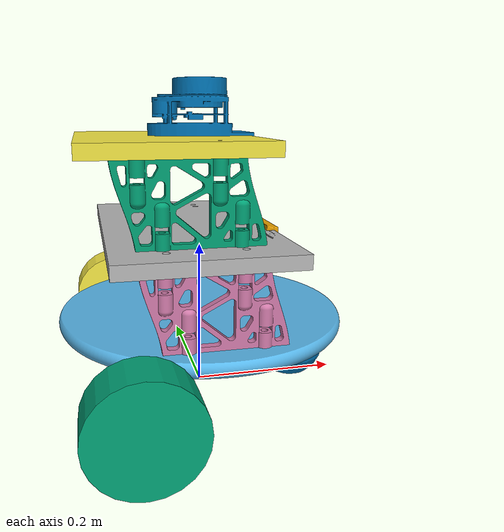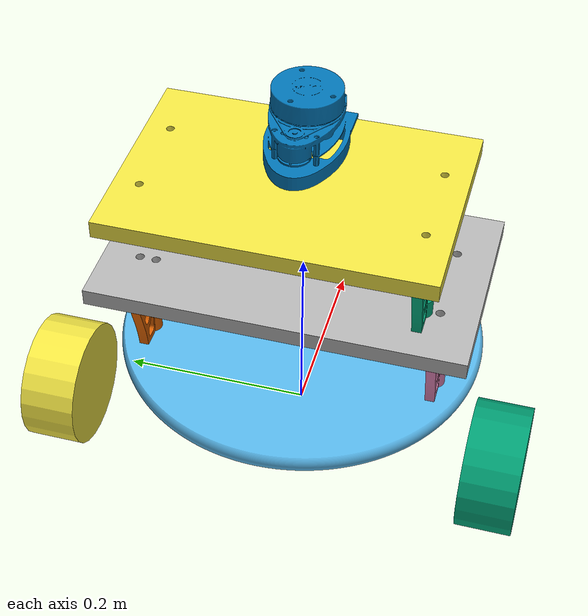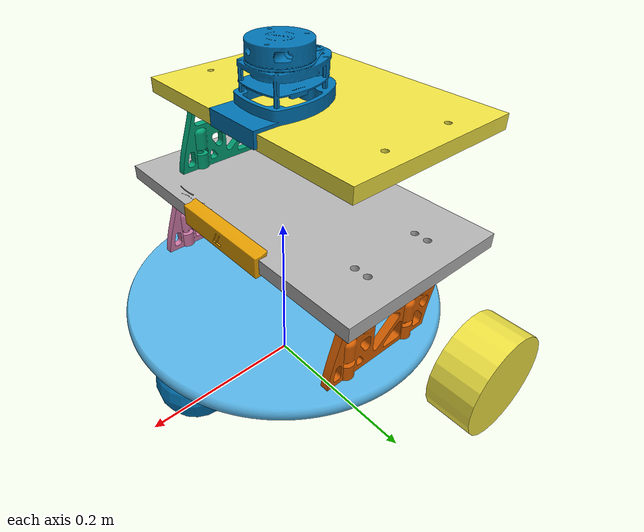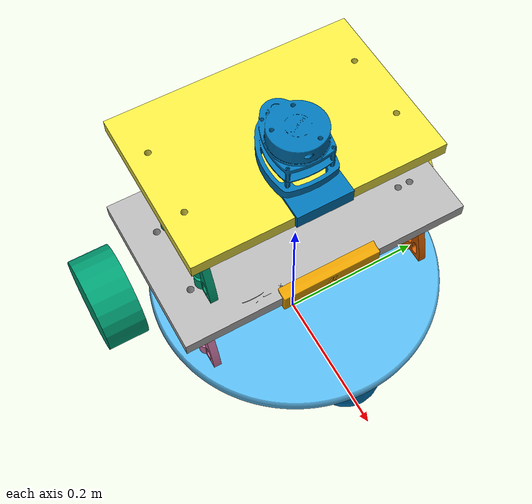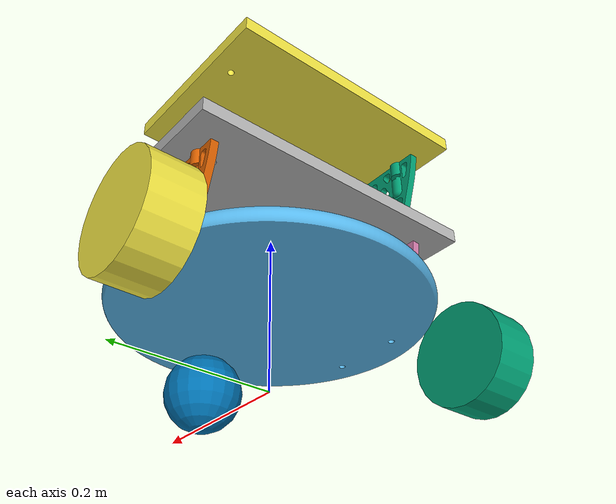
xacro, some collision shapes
<?xml version="1.0"?>

<robot name="six_bot" xmlns:xacro="http://www.ros.org/wiki/xacro">
  <!--xacro:include filename="$(find ghettobot)/urdf/ghettobot.gazebo"/-->
  <xacro:include filename="$(find iai_kinect2_description)/urdf/kinect2.urdf.xacro"/>

  <link name="robot_footprint"></link>

  <joint type="fixed" name="robot_footprint_joint">
    <origin xyz="0 0 0.094" rpy="0 0 0"/>
    <parent link="robot_footprint"/>
    <child link="chassis"/>
  </joint>

  <link name="chassis">
    <pose>0 0 0.094 0 0 0</pose>

    <inertial>
      <mass value="5.0"/>
      <origin xyz="0 0 0" rpy="0 0 0"/>
      <inertia
          ixx="0.1" ixy="0" ixz="0"
          iyy="0.1" iyz="0"
          izz="0.1"
      />
    </inertial>

    <collision name="collision">
      <origin xyz="0 0 0" rpy="0 0 0"/>
      <geometry>
        <mesh filename="package://ghettobot/meshes/dollybase.stl"/>
        <!--cylinder length="0.01835" radius="0.190"/-->
      </geometry>
    </collision>

    <visual name="chassis_visual">
      <origin xyz="0 0 0" rpy="0 0 0"/>
      <geometry>
        <mesh filename="package://ghettobot/meshes/dollybase.stl"/>
      </geometry>
    </visual>
  </link>

  <link name="right_wheel1">
    <collision name="right_wheel1_collision">
      <origin xyz="0 0 0" rpy="1.570796327 0 0"/>
      <geometry>
        <cylinder length="0.05714286" radius="0.06561899"/>
      </geometry>
    </collision>

    <inertial>
      <mass value="1.0"/>
      <origin xyz="0 0 0" rpy="0 0 0"/>
      <inertia
          ixx="0.1" ixy="0" ixz="0"
          iyy="0.1" iyz="0"
          izz="0.1" />
    </inertial>

    <visual name="right_wheel1_visual">
      <origin xyz="0 0 0" rpy="0 0 1.570796327"/>
      <geometry>
        <mesh filename="package://ghettobot/meshes/wheel.stl"/>
      </geometry>
    </visual>

  </link>

  <joint type="continuous" name="right_wheel1_hinge">
    <origin xyz="-0.10498 -0.22955 -0.025" rpy="0 0 0"/>
    <child link="right_wheel1"/>
    <parent link="chassis"/>
    <axis xyz="0 1 0" rpy="0 0 0"/>
    <limit effort="10000" velocity="1000"/>
    <dynamics damping="1.0" friction="1.0"/>

  </joint>

  <link name="left_wheel1">
    <inertial>
      <mass value="1.0"/>
      <origin xyz="0 0 0" rpy="0 0 0"/>
      <inertia
          ixx="0.1" ixy="0" ixz="0"
          iyy="0.1" iyz="0"
          izz="0.1" />
    </inertial>

    <collision name="left_wheel1_collision">
      <origin xyz="0 0 0" rpy="1.570796327 0 0"/>
      <geometry>
        <cylinder length="0.05714286" radius="0.06561899"/>
      </geometry>
    </collision>

    <visual name="left_wheel1_visual">
      <origin xyz="0 0 0" rpy="0 0 -1.570796327"/>
      <geometry>
        <mesh filename="package://ghettobot/meshes/wheel.stl"/>
      </geometry>
    </visual>

  </link>

  <joint type="continuous" name="left_wheel1_hinge">
    <origin xyz="-0.10498 0.22955 -0.025" rpy="0 0 0"/>
    <child link="left_wheel1"/>
    <parent link="chassis"/>
    <axis xyz="0 1 0" rpy="0 0 0"/>
    <limit effort="10000" velocity="1000"/>
    <dynamics damping="1.0" friction="1.0"/>

  </joint>

  <link name="caster">
    <collision name="caster_collision">
      <origin xyz="0 0 0" rpy="0 0 0"/>
      <geometry>
        <sphere radius="0.049"/>
      </geometry>
      <surface>
        <friction>
          <ode>
            <mu>0.00</mu>
            <mu2>0.00</mu2>
          </ode>
        </friction>
      </surface>
    </collision>

    <visual name="caster_visual">
      <origin xyz="0 0 0" rpy="0 0 0"/>
      <geometry>
        <sphere radius="0.049"/>
      </geometry>
    </visual>
  </link>

  <joint type="fixed" name="caster_joint">
    <origin xyz="0.13566 0 -0.049" rpy="0 0 0"/>
    <child link="caster"/>
    <parent link="chassis"/>
  </joint>

<link name="shelf_support_left_bottom">
    <collision name="shelf_support_left_bottom_collision">
      <origin xyz="0 0 0" rpy="0 0 0"/>
        <geometry>
	  <mesh filename="package://ghettobot/meshes/shelfsupport.stl"/>
          <!--box size="0.05 0.05 0.09"/-->
          <!-- box size="0.1 0.1 0.1"/-->
        </geometry>
    </collision>

    <inertial>
      <mass value="0.05"/>
      <origin xyz="0 0 0" rpy="0 0 0"/>
      <inertia
          ixx="1e-6" ixy="0" ixz="0"
          iyy="1e-6" iyz="0"
          izz="1e-6" />
    </inertial>

    <visual name="shelf_support_left_bottom_visual">
      <origin xyz="0 0 0" rpy="0 0 0"/>
      <geometry>
        <mesh filename="package://ghettobot/meshes/shelfsupport.stl"/>
      </geometry>
    </visual>
  </link>

  <joint type="fixed" name="shelf_support_left_bottom_joint">
    <origin xyz="0 0.15336 0.01835" rpy="0 0 3.141592654"/>
    <child link="shelf_support_left_bottom"/>
    <parent link="chassis"/>
  </joint>

<link name="shelf_support_right_bottom">
    <collision name="shelf_support_right_bottom_collision">
      <origin xyz="0 0 0" rpy="0 0 0"/>
        <geometry>
	  <mesh filename="package://ghettobot/meshes/shelfsupport.stl"/>
          <!--box size="0.05 0.05 0.09"/-->
          <!-- box size="0.1 0.1 0.1"/-->
        </geometry>
    </collision>

    <inertial>
      <mass value="0.05"/>
      <origin xyz="0 0 0" rpy="0 0 0"/>
      <inertia
          ixx="1e-6" ixy="0" ixz="0"
          iyy="1e-6" iyz="0"
          izz="1e-6" />
    </inertial>

    <visual name="shelf_support_right_bottom_visual">
      <origin xyz="0 0 0" rpy="0 0 0"/>
      <geometry>
        <mesh filename="package://ghettobot/meshes/shelfsupport.stl"/>
      </geometry>
    </visual>
  </link>

  <joint type="fixed" name="shelf_support_right_bottom_joint">
    <origin xyz="0 -0.15336 0.01835" rpy="0 0 3.141592654"/>
    <child link="shelf_support_right_bottom"/>
    <parent link="chassis"/>
  </joint>

<link name="shelf1">
    <collision name="shelf1_collision">
      <origin xyz="0 0 0" rpy="0 0 0"/>
        <geometry>
	  <mesh filename="package://ghettobot/meshes/shelf1.stl"/>
          <!--box size="0.05 0.05 0.09"/-->
          <!-- box size="0.1 0.1 0.1"/-->
        </geometry>
    </collision>

    <inertial>
      <mass value="0.05"/>
      <origin xyz="0 0 0" rpy="0 0 0"/>
      <inertia
          ixx="1e-6" ixy="0" ixz="0"
          iyy="1e-6" iyz="0"
          izz="1e-6" />
    </inertial>

    <visual name="shelf1_visual">
      <origin xyz="0 0 0" rpy="0 0 0"/>
      <geometry>
        <mesh filename="package://ghettobot/meshes/shelf1.stl"/>
      </geometry>
    </visual>
  </link>

  <joint type="fixed" name="shelf1_joint">
    <origin xyz="0.02354 -0.152316 0.1" rpy="0 0 0"/>
    <child link="shelf1"/>
    <parent link="shelf_support_right_bottom"/>
  </joint>

<link name="kinect_spacer_centre">
    <collision name="kinect_spacer_centre_collision">
      <origin xyz="0 0 0" rpy="0 0 0"/>
        <geometry>
	  <mesh filename="package://ghettobot/meshes/shelf1.stl"/>
          <!--box size="0.05 0.05 0.09"/-->
          <!-- box size="0.1 0.1 0.1"/-->
        </geometry>
    </collision>

    <inertial>
      <mass value="0.05"/>
      <origin xyz="0 0 0" rpy="0 0 0"/>
      <inertia
          ixx="1e-6" ixy="0" ixz="0"
          iyy="1e-6" iyz="0"
          izz="1e-6" />
    </inertial>

    <visual name="kinect_spacer_centre_visual">
      <origin xyz="0 0 0" rpy="0 0 0"/>
      <geometry>
        <mesh filename="package://ghettobot/meshes/kinect_spacer_centre.stl"/>
      </geometry>
    </visual>
  </link>

  <joint type="fixed" name="kinect_spacer_centre_joint">
    <origin xyz="-0.108 0 0" rpy="0 0 0"/>
    <child link="kinect_spacer_centre"/>
    <parent link="shelf1"/>
  </joint>

        <kinect2_xacro parent="shelf1" prefix="shelf1">
                <!-- From CAD -->
		<!--origin xyz="-0.02 0.10 0.02" rpy="-1.570795 0 1.570795" /-->
                <!-- From Halcon calibration on 20160902 -->
		<origin xyz="-0.0825  0.09494 0.059" rpy="0 -0.244346 3.14159265359"/> <!--origin xyz="-0.0815  0.09494 0.059" rpy="0 -0.116937 3.14159265359"/-->
        </kinect2_xacro>

<link name="shelf_support_right_upper">
    <collision name="shelf_support_right_upper_collision">
      <origin xyz="0 0 0" rpy="0 0 0"/>
        <geometry>
	  <mesh filename="package://ghettobot/meshes/shelfsupport.stl"/>
          <!--box size="0.05 0.05 0.09"/-->
          <!-- box size="0.1 0.1 0.1"/-->
        </geometry>
    </collision>

    <inertial>
      <mass value="0.05"/>
      <origin xyz="0 0 0" rpy="0 0 0"/>
      <inertia
          ixx="1e-6" ixy="0" ixz="0"
          iyy="1e-6" iyz="0"
          izz="1e-6" />
    </inertial>

    <visual name="shelf_support_right_upper_visual">
      <origin xyz="0 0 0" rpy="0 0 0"/>
      <geometry>
        <mesh filename="package://ghettobot/meshes/shelfsupport.stl"/>
      </geometry>
    </visual>
  </link>

  <joint type="fixed" name="shelf_support_right_upper_joint">
    <origin xyz="0.002 0.136 0.0174" rpy="0 0 0"/>
    <child link="shelf_support_right_upper"/>
    <parent link="shelf1"/>
  </joint>

<link name="shelf2">
    <collision name="shelf2_collision">
      <origin xyz="0 0 0" rpy="0 0 0"/>
        <geometry>
	  <mesh filename="package://ghettobot/meshes/shelf2.stl"/>
          <!--box size="0.05 0.05 0.09"/-->
          <!-- box size="0.1 0.1 0.1"/-->
        </geometry>
    </collision>

    <inertial>
      <mass value="0.05"/>
      <origin xyz="0 0 0" rpy="0 0 0"/>
      <inertia
          ixx="1e-6" ixy="0" ixz="0"
          iyy="1e-6" iyz="0"
          izz="1e-6" />
    </inertial>

    <visual name="shelf2_visual">
      <origin xyz="0 0 0" rpy="0 0 0"/>
      <geometry>
        <mesh filename="package://ghettobot/meshes/shelf2.stl"/>
      </geometry>
    </visual>
  </link>

  <joint type="fixed" name="shelf2_joint">
    <origin xyz="0.02554 -0.136 0.1" rpy="0 0 0"/>
    <child link="shelf2"/>
    <parent link="shelf_support_right_upper"/>
  </joint>

<link name="lidar">
    <collision name="lidar_collision">
      <origin xyz="0 0 0" rpy="0 0 0"/>
        <geometry>
          <box size="0.1 0.1 0.1"/>
          <!-- box size="0.1 0.1 0.1"/-->
        </geometry>
    </collision>

    <inertial>
      <mass value="0.1"/>
      <origin xyz="0 0 0" rpy="0 0 0"/>
      <inertia
          ixx="1e-6" ixy="0" ixz="0"
          iyy="1e-6" iyz="0"
          izz="1e-6" />
    </inertial>

    <visual name="lidar_visual">
      <origin xyz="0 0 0" rpy="0 0 0"/>
      <geometry>
        <mesh filename="package://ghettobot/meshes/lidar.stl"/>
      </geometry>
    </visual>

  </link>

  <joint type="fixed" name="lidar_joint">
  <origin xyz="-0.05123366 0 0.0789" rpy="0 0 0"/>
    <!--origin xyz="-0.05123366 0 0.09975" rpy="0 0 3.141592654"/-->
    <child link="lidar"/>
    <parent link="shelf2"/>
  </joint>

</robot>

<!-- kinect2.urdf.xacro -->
<!-- This is a hand-made URDF XACRO file for the Microsoft Kinect-2 sensor (Xbox ONE) -->
<!-- Copyright Universitaet Bremen - Instititute for Artificial Intelligence. Author: Alexis Maldonado -->
<!-- License: GPLv3+ -->

<robot xmlns:xacro="http://www.ros.org/wiki/xacro" name="kinect2">

  <xacro:macro name="kinect2_xacro" params="prefix parent *origin">

    <material name="Kinect2Grey">
      <color rgba="0.15 0.15 0.15 1.0"/>
    </material>

    <!-- Joint connecting the parent to our frame_in -->
    <joint name="${prefix}_kinect2_in_joint" type="fixed">
      <xacro:insert_block name="origin"/>
      <parent link="${parent}"/>
      <child link="${prefix}_kinect2_rgb_optical_frame"/>
    </joint>

    <link name="${prefix}_kinect2_rgb_optical_frame">
      <visual>
        <origin rpy="0 0 0" xyz="0 0 0"/>
        <geometry>
          <!-- these meshes were exported in mm, so scale back to m -->
          <mesh filename="package://iai_kinect2_description/meshes/kinect2_origin_on_rgb_optical_frame.stl" scale="0.001 0.001 0.001"/>
        </geometry>
        <material name="Kinect2Grey"/>
      </visual>

      <collision>
        <origin xyz="0 0 0" rpy="0 0 0" />
        <geometry>
          <mesh
            filename="package://iai_kinect2_description/meshes/kinect2_origin_on_rgb_optical_frame.stl" scale="0.001 0.001 0.001"/>
        </geometry>
      </collision>
    </link>

  </xacro:macro>
</robot>
